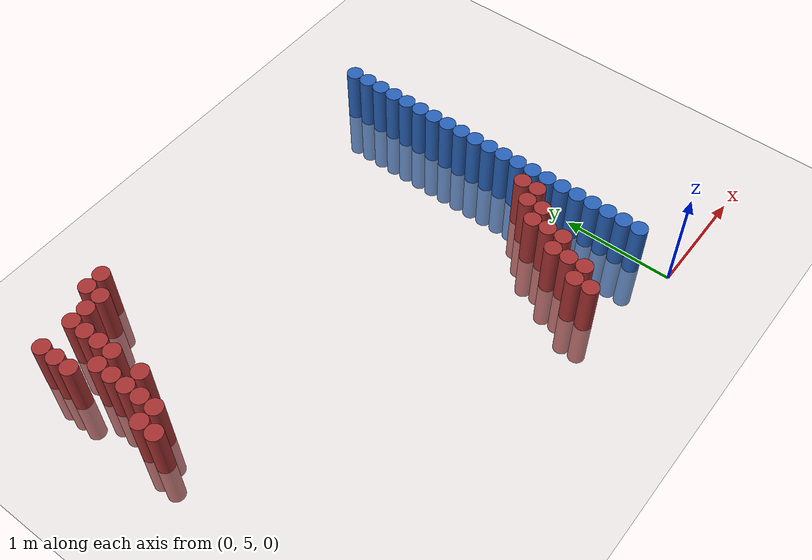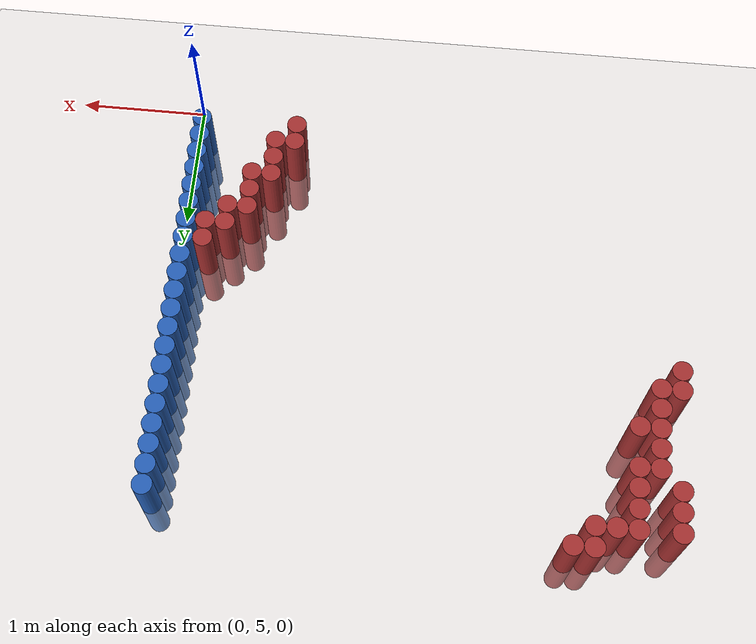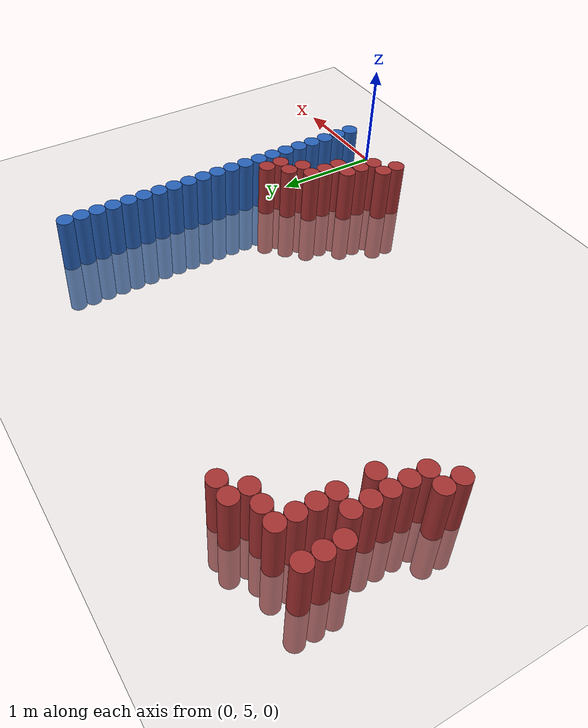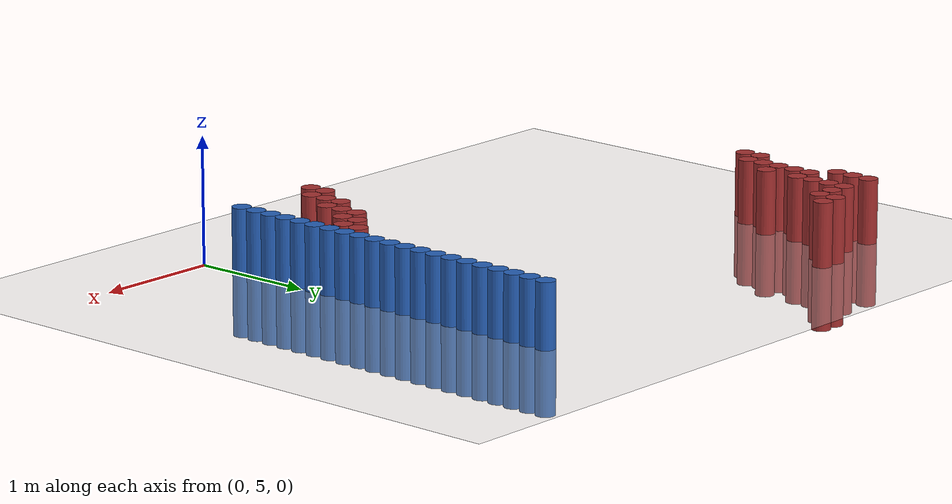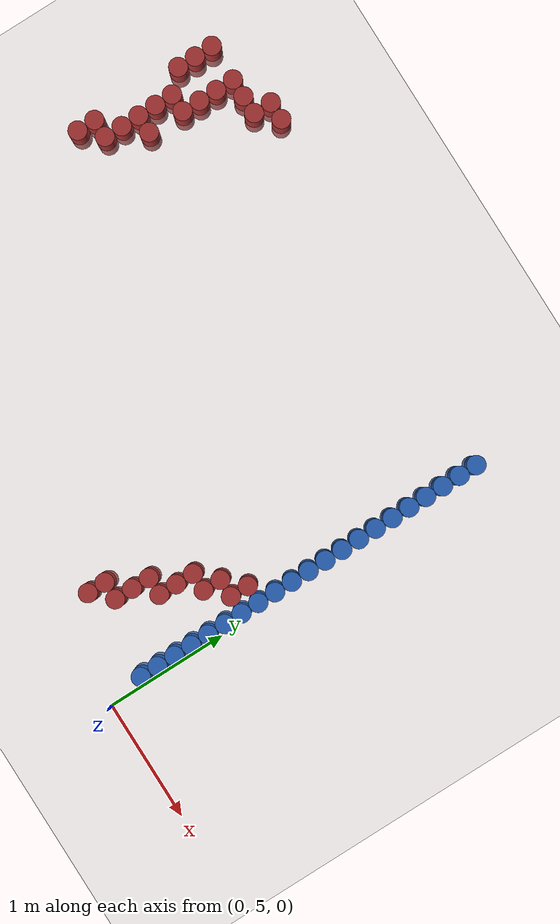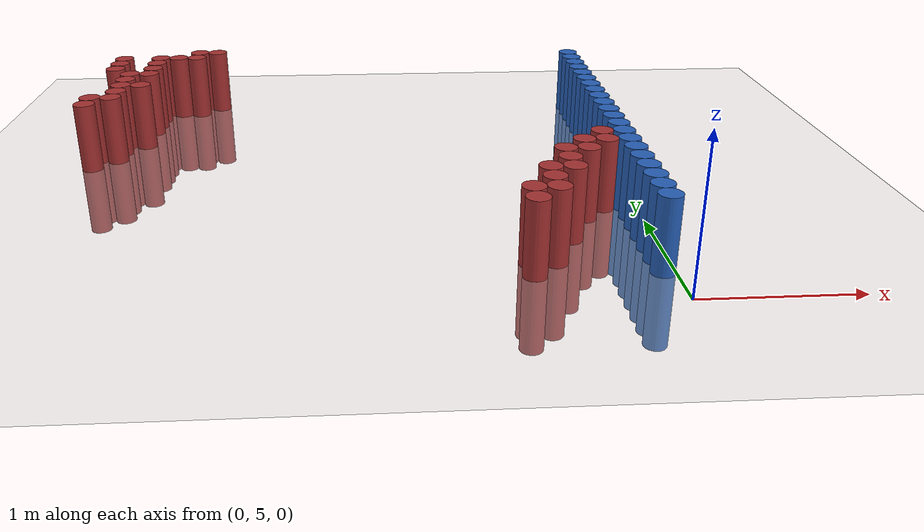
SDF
<sdf version="1.6">
 <world name="default">
  <model name="ground_plane">
   <static>1</static>
   <link name="link">
    <collision name="collision">
     <geometry><plane><normal>0 0 1</normal><size>100 100</size></plane></geometry>
     <surface><friction><ode><mu>100</mu><mu2>50</mu2></ode></friction></surface>
    </collision>
    <visual name="visual">
     <cast_shadows>0</cast_shadows>
     <geometry><plane><normal>0 0 1</normal><size>100 100</size></plane></geometry>
     <material>
      <script><uri>file://media/materials/scripts/gazebo.material</uri><name>Gazebo/Grey</name></script>
     </material>
    </visual>
   </link>
  </model>
  <model name="unit_cylinder_151">
   <static>1</static>
   <pose>-3.825000 7.125000 0.000000 0.000000 0.000000 0.000000</pose>
   <link name="link">
    <inertial>
     <mass>1</mass>
     <inertia><ixx>0.145833</ixx><ixy>0</ixy><ixz>0</ixz><iyy>0.145833</iyy><iyz>0</iyz><izz>0.125</izz></inertia>
    </inertial>
    <collision name="collision">
     <geometry><cylinder><radius>0.075000</radius><length>1</length></cylinder></geometry>
    </collision>
    <visual name="visual">
     <geometry><cylinder><radius>0.075000</radius><length>1</length></cylinder></geometry>
     <material>
      <ambient>0.648000 0.192000 0.192000 1</ambient>
      <diffuse>0.648000 0.192000 0.192000 1</diffuse>
     </material>
     <material>
      <script><name>Gazebo/Grey</name><uri>file://media/materials/scripts/gazebo.material</uri></script>
     </material>
    </visual>
   </link>
  </model>
  <model name="unit_cylinder_152">
   <static>1</static>
   <pose>-3.825000 7.275000 0.000000 0.000000 0.000000 0.000000</pose>
   <link name="link">
    <inertial>
     <mass>1</mass>
     <inertia><ixx>0.145833</ixx><ixy>0</ixy><ixz>0</ixz><iyy>0.145833</iyy><iyz>0</iyz><izz>0.125</izz></inertia>
    </inertial>
    <collision name="collision">
     <geometry><cylinder><radius>0.075000</radius><length>1</length></cylinder></geometry>
    </collision>
    <visual name="visual">
     <geometry><cylinder><radius>0.075000</radius><length>1</length></cylinder></geometry>
     <material>
      <ambient>0.648000 0.192000 0.192000 1</ambient>
      <diffuse>0.648000 0.192000 0.192000 1</diffuse>
     </material>
     <material>
      <script><name>Gazebo/Grey</name><uri>file://media/materials/scripts/gazebo.material</uri></script>
     </material>
    </visual>
   </link>
  </model>
  <model name="unit_cylinder_153">
   <static>1</static>
   <pose>-3.825000 8.025000 0.000000 0.000000 0.000000 0.000000</pose>
   <link name="link">
    <inertial>
     <mass>1</mass>
     <inertia><ixx>0.145833</ixx><ixy>0</ixy><ixz>0</ixz><iyy>0.145833</iyy><iyz>0</iyz><izz>0.125</izz></inertia>
    </inertial>
    <collision name="collision">
     <geometry><cylinder><radius>0.075000</radius><length>1</length></cylinder></geometry>
    </collision>
    <visual name="visual">
     <geometry><cylinder><radius>0.075000</radius><length>1</length></cylinder></geometry>
     <material>
      <ambient>0.648000 0.192000 0.192000 1</ambient>
      <diffuse>0.648000 0.192000 0.192000 1</diffuse>
     </material>
     <material>
      <script><name>Gazebo/Grey</name><uri>file://media/materials/scripts/gazebo.material</uri></script>
     </material>
    </visual>
   </link>
  </model>
  <model name="unit_cylinder_154">
   <static>1</static>
   <pose>-3.825000 8.175000 0.000000 0.000000 0.000000 0.000000</pose>
   <link name="link">
    <inertial>
     <mass>1</mass>
     <inertia><ixx>0.145833</ixx><ixy>0</ixy><ixz>0</ixz><iyy>0.145833</iyy><iyz>0</iyz><izz>0.125</izz></inertia>
    </inertial>
    <collision name="collision">
     <geometry><cylinder><radius>0.075000</radius><length>1</length></cylinder></geometry>
    </collision>
    <visual name="visual">
     <geometry><cylinder><radius>0.075000</radius><length>1</length></cylinder></geometry>
     <material>
      <ambient>0.648000 0.192000 0.192000 1</ambient>
      <diffuse>0.648000 0.192000 0.192000 1</diffuse>
     </material>
     <material>
      <script><name>Gazebo/Grey</name><uri>file://media/materials/scripts/gazebo.material</uri></script>
     </material>
    </visual>
   </link>
  </model>
  <model name="unit_cylinder_155">
   <static>1</static>
   <pose>-3.825000 8.325000 0.000000 0.000000 0.000000 0.000000</pose>
   <link name="link">
    <inertial>
     <mass>1</mass>
     <inertia><ixx>0.145833</ixx><ixy>0</ixy><ixz>0</ixz><iyy>0.145833</iyy><iyz>0</iyz><izz>0.125</izz></inertia>
    </inertial>
    <collision name="collision">
     <geometry><cylinder><radius>0.075000</radius><length>1</length></cylinder></geometry>
    </collision>
    <visual name="visual">
     <geometry><cylinder><radius>0.075000</radius><length>1</length></cylinder></geometry>
     <material>
      <ambient>0.648000 0.192000 0.192000 1</ambient>
      <diffuse>0.648000 0.192000 0.192000 1</diffuse>
     </material>
     <material>
      <script><name>Gazebo/Grey</name><uri>file://media/materials/scripts/gazebo.material</uri></script>
     </material>
    </visual>
   </link>
  </model>
  <model name="unit_cylinder_157">
   <static>1</static>
   <pose>-3.675000 7.275000 0.000000 0.000000 0.000000 0.000000</pose>
   <link name="link">
    <inertial>
     <mass>1</mass>
     <inertia><ixx>0.145833</ixx><ixy>0</ixy><ixz>0</ixz><iyy>0.145833</iyy><iyz>0</iyz><izz>0.125</izz></inertia>
    </inertial>
    <collision name="collision">
     <geometry><cylinder><radius>0.075000</radius><length>1</length></cylinder></geometry>
    </collision>
    <visual name="visual">
     <geometry><cylinder><radius>0.075000</radius><length>1</length></cylinder></geometry>
     <material>
      <ambient>0.648000 0.192000 0.192000 1</ambient>
      <diffuse>0.648000 0.192000 0.192000 1</diffuse>
     </material>
     <material>
      <script><name>Gazebo/Grey</name><uri>file://media/materials/scripts/gazebo.material</uri></script>
     </material>
    </visual>
   </link>
  </model>
  <model name="unit_cylinder_158">
   <static>1</static>
   <pose>-3.675000 7.425000 0.000000 0.000000 0.000000 0.000000</pose>
   <link name="link">
    <inertial>
     <mass>1</mass>
     <inertia><ixx>0.145833</ixx><ixy>0</ixy><ixz>0</ixz><iyy>0.145833</iyy><iyz>0</iyz><izz>0.125</izz></inertia>
    </inertial>
    <collision name="collision">
     <geometry><cylinder><radius>0.075000</radius><length>1</length></cylinder></geometry>
    </collision>
    <visual name="visual">
     <geometry><cylinder><radius>0.075000</radius><length>1</length></cylinder></geometry>
     <material>
      <ambient>0.648000 0.192000 0.192000 1</ambient>
      <diffuse>0.648000 0.192000 0.192000 1</diffuse>
     </material>
     <material>
      <script><name>Gazebo/Grey</name><uri>file://media/materials/scripts/gazebo.material</uri></script>
     </material>
    </visual>
   </link>
  </model>
  <model name="unit_cylinder_159">
   <static>1</static>
   <pose>-3.675000 7.575000 0.000000 0.000000 0.000000 0.000000</pose>
   <link name="link">
    <inertial>
     <mass>1</mass>
     <inertia><ixx>0.145833</ixx><ixy>0</ixy><ixz>0</ixz><iyy>0.145833</iyy><iyz>0</iyz><izz>0.125</izz></inertia>
    </inertial>
    <collision name="collision">
     <geometry><cylinder><radius>0.075000</radius><length>1</length></cylinder></geometry>
    </collision>
    <visual name="visual">
     <geometry><cylinder><radius>0.075000</radius><length>1</length></cylinder></geometry>
     <material>
      <ambient>0.648000 0.192000 0.192000 1</ambient>
      <diffuse>0.648000 0.192000 0.192000 1</diffuse>
     </material>
     <material>
      <script><name>Gazebo/Grey</name><uri>file://media/materials/scripts/gazebo.material</uri></script>
     </material>
    </visual>
   </link>
  </model>
  <model name="unit_cylinder_160">
   <static>1</static>
   <pose>-3.675000 7.725000 0.000000 0.000000 0.000000 0.000000</pose>
   <link name="link">
    <inertial>
     <mass>1</mass>
     <inertia><ixx>0.145833</ixx><ixy>0</ixy><ixz>0</ixz><iyy>0.145833</iyy><iyz>0</iyz><izz>0.125</izz></inertia>
    </inertial>
    <collision name="collision">
     <geometry><cylinder><radius>0.075000</radius><length>1</length></cylinder></geometry>
    </collision>
    <visual name="visual">
     <geometry><cylinder><radius>0.075000</radius><length>1</length></cylinder></geometry>
     <material>
      <ambient>0.648000 0.192000 0.192000 1</ambient>
      <diffuse>0.648000 0.192000 0.192000 1</diffuse>
     </material>
     <material>
      <script><name>Gazebo/Grey</name><uri>file://media/materials/scripts/gazebo.material</uri></script>
     </material>
    </visual>
   </link>
  </model>
  <model name="unit_cylinder_161">
   <static>1</static>
   <pose>-3.675000 7.875000 0.000000 0.000000 0.000000 0.000000</pose>
   <link name="link">
    <inertial>
     <mass>1</mass>
     <inertia><ixx>0.145833</ixx><ixy>0</ixy><ixz>0</ixz><iyy>0.145833</iyy><iyz>0</iyz><izz>0.125</izz></inertia>
    </inertial>
    <collision name="collision">
     <geometry><cylinder><radius>0.075000</radius><length>1</length></cylinder></geometry>
    </collision>
    <visual name="visual">
     <geometry><cylinder><radius>0.075000</radius><length>1</length></cylinder></geometry>
     <material>
      <ambient>0.648000 0.192000 0.192000 1</ambient>
      <diffuse>0.648000 0.192000 0.192000 1</diffuse>
     </material>
     <material>
      <script><name>Gazebo/Grey</name><uri>file://media/materials/scripts/gazebo.material</uri></script>
     </material>
    </visual>
   </link>
  </model>
  <model name="unit_cylinder_163">
   <static>1</static>
   <pose>-3.525000 7.575000 0.000000 0.000000 0.000000 0.000000</pose>
   <link name="link">
    <inertial>
     <mass>1</mass>
     <inertia><ixx>0.145833</ixx><ixy>0</ixy><ixz>0</ixz><iyy>0.145833</iyy><iyz>0</iyz><izz>0.125</izz></inertia>
    </inertial>
    <collision name="collision">
     <geometry><cylinder><radius>0.075000</radius><length>1</length></cylinder></geometry>
    </collision>
    <visual name="visual">
     <geometry><cylinder><radius>0.075000</radius><length>1</length></cylinder></geometry>
     <material>
      <ambient>0.648000 0.192000 0.192000 1</ambient>
      <diffuse>0.648000 0.192000 0.192000 1</diffuse>
     </material>
     <material>
      <script><name>Gazebo/Grey</name><uri>file://media/materials/scripts/gazebo.material</uri></script>
     </material>
    </visual>
   </link>
  </model>
  <model name="unit_cylinder_164">
   <static>1</static>
   <pose>-3.525000 7.875000 0.000000 0.000000 0.000000 0.000000</pose>
   <link name="link">
    <inertial>
     <mass>1</mass>
     <inertia><ixx>0.145833</ixx><ixy>0</ixy><ixz>0</ixz><iyy>0.145833</iyy><iyz>0</iyz><izz>0.125</izz></inertia>
    </inertial>
    <collision name="collision">
     <geometry><cylinder><radius>0.075000</radius><length>1</length></cylinder></geometry>
    </collision>
    <visual name="visual">
     <geometry><cylinder><radius>0.075000</radius><length>1</length></cylinder></geometry>
     <material>
      <ambient>0.648000 0.192000 0.192000 1</ambient>
      <diffuse>0.648000 0.192000 0.192000 1</diffuse>
     </material>
     <material>
      <script><name>Gazebo/Grey</name><uri>file://media/materials/scripts/gazebo.material</uri></script>
     </material>
    </visual>
   </link>
  </model>
  <model name="unit_cylinder_165">
   <static>1</static>
   <pose>-3.525000 8.025000 0.000000 0.000000 0.000000 0.000000</pose>
   <link name="link">
    <inertial>
     <mass>1</mass>
     <inertia><ixx>0.145833</ixx><ixy>0</ixy><ixz>0</ixz><iyy>0.145833</iyy><iyz>0</iyz><izz>0.125</izz></inertia>
    </inertial>
    <collision name="collision">
     <geometry><cylinder><radius>0.075000</radius><length>1</length></cylinder></geometry>
    </collision>
    <visual name="visual">
     <geometry><cylinder><radius>0.075000</radius><length>1</length></cylinder></geometry>
     <material>
      <ambient>0.648000 0.192000 0.192000 1</ambient>
      <diffuse>0.648000 0.192000 0.192000 1</diffuse>
     </material>
     <material>
      <script><name>Gazebo/Grey</name><uri>file://media/materials/scripts/gazebo.material</uri></script>
     </material>
    </visual>
   </link>
  </model>
  <model name="unit_cylinder_166">
   <static>1</static>
   <pose>-3.525000 8.175000 0.000000 0.000000 0.000000 0.000000</pose>
   <link name="link">
    <inertial>
     <mass>1</mass>
     <inertia><ixx>0.145833</ixx><ixy>0</ixy><ixz>0</ixz><iyy>0.145833</iyy><iyz>0</iyz><izz>0.125</izz></inertia>
    </inertial>
    <collision name="collision">
     <geometry><cylinder><radius>0.075000</radius><length>1</length></cylinder></geometry>
    </collision>
    <visual name="visual">
     <geometry><cylinder><radius>0.075000</radius><length>1</length></cylinder></geometry>
     <material>
      <ambient>0.648000 0.192000 0.192000 1</ambient>
      <diffuse>0.648000 0.192000 0.192000 1</diffuse>
     </material>
     <material>
      <script><name>Gazebo/Grey</name><uri>file://media/materials/scripts/gazebo.material</uri></script>
     </material>
    </visual>
   </link>
  </model>
  <model name="unit_cylinder_167">
   <static>1</static>
   <pose>-3.525000 8.325000 0.000000 0.000000 0.000000 0.000000</pose>
   <link name="link">
    <inertial>
     <mass>1</mass>
     <inertia><ixx>0.145833</ixx><ixy>0</ixy><ixz>0</ixz><iyy>0.145833</iyy><iyz>0</iyz><izz>0.125</izz></inertia>
    </inertial>
    <collision name="collision">
     <geometry><cylinder><radius>0.075000</radius><length>1</length></cylinder></geometry>
    </collision>
    <visual name="visual">
     <geometry><cylinder><radius>0.075000</radius><length>1</length></cylinder></geometry>
     <material>
      <ambient>0.648000 0.192000 0.192000 1</ambient>
      <diffuse>0.648000 0.192000 0.192000 1</diffuse>
     </material>
     <material>
      <script><name>Gazebo/Grey</name><uri>file://media/materials/scripts/gazebo.material</uri></script>
     </material>
    </visual>
   </link>
  </model>
  <model name="unit_cylinder_169">
   <static>1</static>
   <pose>-3.375000 8.325000 0.000000 0.000000 0.000000 0.000000</pose>
   <link name="link">
    <inertial>
     <mass>1</mass>
     <inertia><ixx>0.145833</ixx><ixy>0</ixy><ixz>0</ixz><iyy>0.145833</iyy><iyz>0</iyz><izz>0.125</izz></inertia>
    </inertial>
    <collision name="collision">
     <geometry><cylinder><radius>0.075000</radius><length>1</length></cylinder></geometry>
    </collision>
    <visual name="visual">
     <geometry><cylinder><radius>0.075000</radius><length>1</length></cylinder></geometry>
     <material>
      <ambient>0.648000 0.192000 0.192000 1</ambient>
      <diffuse>0.648000 0.192000 0.192000 1</diffuse>
     </material>
     <material>
      <script><name>Gazebo/Grey</name><uri>file://media/materials/scripts/gazebo.material</uri></script>
     </material>
    </visual>
   </link>
  </model>
  <model name="unit_cylinder_171">
   <static>1</static>
   <pose>-3.225000 8.325000 0.000000 0.000000 0.000000 0.000000</pose>
   <link name="link">
    <inertial>
     <mass>1</mass>
     <inertia><ixx>0.145833</ixx><ixy>0</ixy><ixz>0</ixz><iyy>0.145833</iyy><iyz>0</iyz><izz>0.125</izz></inertia>
    </inertial>
    <collision name="collision">
     <geometry><cylinder><radius>0.075000</radius><length>1</length></cylinder></geometry>
    </collision>
    <visual name="visual">
     <geometry><cylinder><radius>0.075000</radius><length>1</length></cylinder></geometry>
     <material>
      <ambient>0.648000 0.192000 0.192000 1</ambient>
      <diffuse>0.648000 0.192000 0.192000 1</diffuse>
     </material>
     <material>
      <script><name>Gazebo/Grey</name><uri>file://media/materials/scripts/gazebo.material</uri></script>
     </material>
    </visual>
   </link>
  </model>
  <model name="unit_cylinder_172">
   <static>1</static>
   <pose>-3.225000 8.475000 0.000000 0.000000 0.000000 0.000000</pose>
   <link name="link">
    <inertial>
     <mass>1</mass>
     <inertia><ixx>0.145833</ixx><ixy>0</ixy><ixz>0</ixz><iyy>0.145833</iyy><iyz>0</iyz><izz>0.125</izz></inertia>
    </inertial>
    <collision name="collision">
     <geometry><cylinder><radius>0.075000</radius><length>1</length></cylinder></geometry>
    </collision>
    <visual name="visual">
     <geometry><cylinder><radius>0.075000</radius><length>1</length></cylinder></geometry>
     <material>
      <ambient>0.648000 0.192000 0.192000 1</ambient>
      <diffuse>0.648000 0.192000 0.192000 1</diffuse>
     </material>
     <material>
      <script><name>Gazebo/Grey</name><uri>file://media/materials/scripts/gazebo.material</uri></script>
     </material>
    </visual>
   </link>
  </model>
  <model name="unit_cylinder_174">
   <static>1</static>
   <pose>-3.075000 8.475000 0.000000 0.000000 0.000000 0.000000</pose>
   <link name="link">
    <inertial>
     <mass>1</mass>
     <inertia><ixx>0.145833</ixx><ixy>0</ixy><ixz>0</ixz><iyy>0.145833</iyy><iyz>0</iyz><izz>0.125</izz></inertia>
    </inertial>
    <collision name="collision">
     <geometry><cylinder><radius>0.075000</radius><length>1</length></cylinder></geometry>
    </collision>
    <visual name="visual">
     <geometry><cylinder><radius>0.075000</radius><length>1</length></cylinder></geometry>
     <material>
      <ambient>0.648000 0.192000 0.192000 1</ambient>
      <diffuse>0.648000 0.192000 0.192000 1</diffuse>
     </material>
     <material>
      <script><name>Gazebo/Grey</name><uri>file://media/materials/scripts/gazebo.material</uri></script>
     </material>
    </visual>
   </link>
  </model>
  <model name="unit_cylinder_215">
   <static>1</static>
   <pose>-0.825000 5.325000 0.000000 0.000000 0.000000 0.000000</pose>
   <link name="link">
    <inertial>
     <mass>1</mass>
     <inertia><ixx>0.145833</ixx><ixy>0</ixy><ixz>0</ixz><iyy>0.145833</iyy><iyz>0</iyz><izz>0.125</izz></inertia>
    </inertial>
    <collision name="collision">
     <geometry><cylinder><radius>0.075000</radius><length>1</length></cylinder></geometry>
    </collision>
    <visual name="visual">
     <geometry><cylinder><radius>0.075000</radius><length>1</length></cylinder></geometry>
     <material>
      <ambient>0.648000 0.192000 0.192000 1</ambient>
      <diffuse>0.648000 0.192000 0.192000 1</diffuse>
     </material>
     <material>
      <script><name>Gazebo/Grey</name><uri>file://media/materials/scripts/gazebo.material</uri></script>
     </material>
    </visual>
   </link>
  </model>
  <model name="unit_cylinder_216">
   <static>1</static>
   <pose>-0.825000 5.475000 0.000000 0.000000 0.000000 0.000000</pose>
   <link name="link">
    <inertial>
     <mass>1</mass>
     <inertia><ixx>0.145833</ixx><ixy>0</ixy><ixz>0</ixz><iyy>0.145833</iyy><iyz>0</iyz><izz>0.125</izz></inertia>
    </inertial>
    <collision name="collision">
     <geometry><cylinder><radius>0.075000</radius><length>1</length></cylinder></geometry>
    </collision>
    <visual name="visual">
     <geometry><cylinder><radius>0.075000</radius><length>1</length></cylinder></geometry>
     <material>
      <ambient>0.648000 0.192000 0.192000 1</ambient>
      <diffuse>0.648000 0.192000 0.192000 1</diffuse>
     </material>
     <material>
      <script><name>Gazebo/Grey</name><uri>file://media/materials/scripts/gazebo.material</uri></script>
     </material>
    </visual>
   </link>
  </model>
  <model name="unit_cylinder_219">
   <static>1</static>
   <pose>-0.675000 5.475000 0.000000 0.000000 0.000000 0.000000</pose>
   <link name="link">
    <inertial>
     <mass>1</mass>
     <inertia><ixx>0.145833</ixx><ixy>0</ixy><ixz>0</ixz><iyy>0.145833</iyy><iyz>0</iyz><izz>0.125</izz></inertia>
    </inertial>
    <collision name="collision">
     <geometry><cylinder><radius>0.075000</radius><length>1</length></cylinder></geometry>
    </collision>
    <visual name="visual">
     <geometry><cylinder><radius>0.075000</radius><length>1</length></cylinder></geometry>
     <material>
      <ambient>0.648000 0.192000 0.192000 1</ambient>
      <diffuse>0.648000 0.192000 0.192000 1</diffuse>
     </material>
     <material>
      <script><name>Gazebo/Grey</name><uri>file://media/materials/scripts/gazebo.material</uri></script>
     </material>
    </visual>
   </link>
  </model>
  <model name="unit_cylinder_220">
   <static>1</static>
   <pose>-0.675000 5.625000 0.000000 0.000000 0.000000 0.000000</pose>
   <link name="link">
    <inertial>
     <mass>1</mass>
     <inertia><ixx>0.145833</ixx><ixy>0</ixy><ixz>0</ixz><iyy>0.145833</iyy><iyz>0</iyz><izz>0.125</izz></inertia>
    </inertial>
    <collision name="collision">
     <geometry><cylinder><radius>0.075000</radius><length>1</length></cylinder></geometry>
    </collision>
    <visual name="visual">
     <geometry><cylinder><radius>0.075000</radius><length>1</length></cylinder></geometry>
     <material>
      <ambient>0.648000 0.192000 0.192000 1</ambient>
      <diffuse>0.648000 0.192000 0.192000 1</diffuse>
     </material>
     <material>
      <script><name>Gazebo/Grey</name><uri>file://media/materials/scripts/gazebo.material</uri></script>
     </material>
    </visual>
   </link>
  </model>
  <model name="unit_cylinder_221">
   <static>1</static>
   <pose>-0.675000 5.775000 0.000000 0.000000 0.000000 0.000000</pose>
   <link name="link">
    <inertial>
     <mass>1</mass>
     <inertia><ixx>0.145833</ixx><ixy>0</ixy><ixz>0</ixz><iyy>0.145833</iyy><iyz>0</iyz><izz>0.125</izz></inertia>
    </inertial>
    <collision name="collision">
     <geometry><cylinder><radius>0.075000</radius><length>1</length></cylinder></geometry>
    </collision>
    <visual name="visual">
     <geometry><cylinder><radius>0.075000</radius><length>1</length></cylinder></geometry>
     <material>
      <ambient>0.648000 0.192000 0.192000 1</ambient>
      <diffuse>0.648000 0.192000 0.192000 1</diffuse>
     </material>
     <material>
      <script><name>Gazebo/Grey</name><uri>file://media/materials/scripts/gazebo.material</uri></script>
     </material>
    </visual>
   </link>
  </model>
  <model name="unit_cylinder_223">
   <static>1</static>
   <pose>-0.525000 5.775000 0.000000 0.000000 0.000000 0.000000</pose>
   <link name="link">
    <inertial>
     <mass>1</mass>
     <inertia><ixx>0.145833</ixx><ixy>0</ixy><ixz>0</ixz><iyy>0.145833</iyy><iyz>0</iyz><izz>0.125</izz></inertia>
    </inertial>
    <collision name="collision">
     <geometry><cylinder><radius>0.075000</radius><length>1</length></cylinder></geometry>
    </collision>
    <visual name="visual">
     <geometry><cylinder><radius>0.075000</radius><length>1</length></cylinder></geometry>
     <material>
      <ambient>0.648000 0.192000 0.192000 1</ambient>
      <diffuse>0.648000 0.192000 0.192000 1</diffuse>
     </material>
     <material>
      <script><name>Gazebo/Grey</name><uri>file://media/materials/scripts/gazebo.material</uri></script>
     </material>
    </visual>
   </link>
  </model>
  <model name="unit_cylinder_224">
   <static>1</static>
   <pose>-0.525000 5.925000 0.000000 0.000000 0.000000 0.000000</pose>
   <link name="link">
    <inertial>
     <mass>1</mass>
     <inertia><ixx>0.145833</ixx><ixy>0</ixy><ixz>0</ixz><iyy>0.145833</iyy><iyz>0</iyz><izz>0.125</izz></inertia>
    </inertial>
    <collision name="collision">
     <geometry><cylinder><radius>0.075000</radius><length>1</length></cylinder></geometry>
    </collision>
    <visual name="visual">
     <geometry><cylinder><radius>0.075000</radius><length>1</length></cylinder></geometry>
     <material>
      <ambient>0.648000 0.192000 0.192000 1</ambient>
      <diffuse>0.648000 0.192000 0.192000 1</diffuse>
     </material>
     <material>
      <script><name>Gazebo/Grey</name><uri>file://media/materials/scripts/gazebo.material</uri></script>
     </material>
    </visual>
   </link>
  </model>
  <model name="unit_cylinder_225">
   <static>1</static>
   <pose>-0.525000 6.075000 0.000000 0.000000 0.000000 0.000000</pose>
   <link name="link">
    <inertial>
     <mass>1</mass>
     <inertia><ixx>0.145833</ixx><ixy>0</ixy><ixz>0</ixz><iyy>0.145833</iyy><iyz>0</iyz><izz>0.125</izz></inertia>
    </inertial>
    <collision name="collision">
     <geometry><cylinder><radius>0.075000</radius><length>1</length></cylinder></geometry>
    </collision>
    <visual name="visual">
     <geometry><cylinder><radius>0.075000</radius><length>1</length></cylinder></geometry>
     <material>
      <ambient>0.648000 0.192000 0.192000 1</ambient>
      <diffuse>0.648000 0.192000 0.192000 1</diffuse>
     </material>
     <material>
      <script><name>Gazebo/Grey</name><uri>file://media/materials/scripts/gazebo.material</uri></script>
     </material>
    </visual>
   </link>
  </model>
  <model name="unit_cylinder_227">
   <static>1</static>
   <pose>-0.375000 6.075000 0.000000 0.000000 0.000000 0.000000</pose>
   <link name="link">
    <inertial>
     <mass>1</mass>
     <inertia><ixx>0.145833</ixx><ixy>0</ixy><ixz>0</ixz><iyy>0.145833</iyy><iyz>0</iyz><izz>0.125</izz></inertia>
    </inertial>
    <collision name="collision">
     <geometry><cylinder><radius>0.075000</radius><length>1</length></cylinder></geometry>
    </collision>
    <visual name="visual">
     <geometry><cylinder><radius>0.075000</radius><length>1</length></cylinder></geometry>
     <material>
      <ambient>0.648000 0.192000 0.192000 1</ambient>
      <diffuse>0.648000 0.192000 0.192000 1</diffuse>
     </material>
     <material>
      <script><name>Gazebo/Grey</name><uri>file://media/materials/scripts/gazebo.material</uri></script>
     </material>
    </visual>
   </link>
  </model>
  <model name="unit_cylinder_228">
   <static>1</static>
   <pose>-0.375000 6.225000 0.000000 0.000000 0.000000 0.000000</pose>
   <link name="link">
    <inertial>
     <mass>1</mass>
     <inertia><ixx>0.145833</ixx><ixy>0</ixy><ixz>0</ixz><iyy>0.145833</iyy><iyz>0</iyz><izz>0.125</izz></inertia>
    </inertial>
    <collision name="collision">
     <geometry><cylinder><radius>0.075000</radius><length>1</length></cylinder></geometry>
    </collision>
    <visual name="visual">
     <geometry><cylinder><radius>0.075000</radius><length>1</length></cylinder></geometry>
     <material>
      <ambient>0.648000 0.192000 0.192000 1</ambient>
      <diffuse>0.648000 0.192000 0.192000 1</diffuse>
     </material>
     <material>
      <script><name>Gazebo/Grey</name><uri>file://media/materials/scripts/gazebo.material</uri></script>
     </material>
    </visual>
   </link>
  </model>
  <model name="unit_cylinder_230">
   <static>1</static>
   <pose>-0.225000 6.225000 0.000000 0.000000 0.000000 0.000000</pose>
   <link name="link">
    <inertial>
     <mass>1</mass>
     <inertia><ixx>0.145833</ixx><ixy>0</ixy><ixz>0</ixz><iyy>0.145833</iyy><iyz>0</iyz><izz>0.125</izz></inertia>
    </inertial>
    <collision name="collision">
     <geometry><cylinder><radius>0.075000</radius><length>1</length></cylinder></geometry>
    </collision>
    <visual name="visual">
     <geometry><cylinder><radius>0.075000</radius><length>1</length></cylinder></geometry>
     <material>
      <ambient>0.648000 0.192000 0.192000 1</ambient>
      <diffuse>0.648000 0.192000 0.192000 1</diffuse>
     </material>
     <material>
      <script><name>Gazebo/Grey</name><uri>file://media/materials/scripts/gazebo.material</uri></script>
     </material>
    </visual>
   </link>
  </model>
  <model name="unit_cylinder_231">
   <static>1</static>
   <pose>-0.225000 6.375000 0.000000 0.000000 0.000000 0.000000</pose>
   <link name="link">
    <inertial>
     <mass>1</mass>
     <inertia><ixx>0.145833</ixx><ixy>0</ixy><ixz>0</ixz><iyy>0.145833</iyy><iyz>0</iyz><izz>0.125</izz></inertia>
    </inertial>
    <collision name="collision">
     <geometry><cylinder><radius>0.075000</radius><length>1</length></cylinder></geometry>
    </collision>
    <visual name="visual">
     <geometry><cylinder><radius>0.075000</radius><length>1</length></cylinder></geometry>
     <material>
      <ambient>0.648000 0.192000 0.192000 1</ambient>
      <diffuse>0.648000 0.192000 0.192000 1</diffuse>
     </material>
     <material>
      <script><name>Gazebo/Grey</name><uri>file://media/materials/scripts/gazebo.material</uri></script>
     </material>
    </visual>
   </link>
  </model>
  <model name="unit_cylinder_233">
   <static>1</static>
   <pose>-0.075000 5.325000 0.000000 0.000000 0.000000 0.000000</pose>
   <link name="link">
    <inertial>
     <mass>1</mass>
     <inertia><ixx>0.145833</ixx><ixy>0</ixy><ixz>0</ixz><iyy>0.145833</iyy><iyz>0</iyz><izz>0.125</izz></inertia>
    </inertial>
    <collision name="collision">
     <geometry><cylinder><radius>0.075000</radius><length>1</length></cylinder></geometry>
    </collision>
    <visual name="visual">
     <geometry><cylinder><radius>0.075000</radius><length>1</length></cylinder></geometry>
     <material>
      <ambient>0.152000 0.379000 0.720000 1</ambient>
      <diffuse>0.152000 0.379000 0.720000 1</diffuse>
     </material>
     <material>
      <script><name>Gazebo/Grey</name><uri>file://media/materials/scripts/gazebo.material</uri></script>
     </material>
    </visual>
   </link>
  </model>
  <model name="unit_cylinder_234">
   <static>1</static>
   <pose>-0.075000 5.475000 0.000000 0.000000 0.000000 0.000000</pose>
   <link name="link">
    <inertial>
     <mass>1</mass>
     <inertia><ixx>0.145833</ixx><ixy>0</ixy><ixz>0</ixz><iyy>0.145833</iyy><iyz>0</iyz><izz>0.125</izz></inertia>
    </inertial>
    <collision name="collision">
     <geometry><cylinder><radius>0.075000</radius><length>1</length></cylinder></geometry>
    </collision>
    <visual name="visual">
     <geometry><cylinder><radius>0.075000</radius><length>1</length></cylinder></geometry>
     <material>
      <ambient>0.152000 0.379000 0.720000 1</ambient>
      <diffuse>0.152000 0.379000 0.720000 1</diffuse>
     </material>
     <material>
      <script><name>Gazebo/Grey</name><uri>file://media/materials/scripts/gazebo.material</uri></script>
     </material>
    </visual>
   </link>
  </model>
  <model name="unit_cylinder_235">
   <static>1</static>
   <pose>-0.075000 5.625000 0.000000 0.000000 0.000000 0.000000</pose>
   <link name="link">
    <inertial>
     <mass>1</mass>
     <inertia><ixx>0.145833</ixx><ixy>0</ixy><ixz>0</ixz><iyy>0.145833</iyy><iyz>0</iyz><izz>0.125</izz></inertia>
    </inertial>
    <collision name="collision">
     <geometry><cylinder><radius>0.075000</radius><length>1</length></cylinder></geometry>
    </collision>
    <visual name="visual">
     <geometry><cylinder><radius>0.075000</radius><length>1</length></cylinder></geometry>
     <material>
      <ambient>0.152000 0.379000 0.720000 1</ambient>
      <diffuse>0.152000 0.379000 0.720000 1</diffuse>
     </material>
     <material>
      <script><name>Gazebo/Grey</name><uri>file://media/materials/scripts/gazebo.material</uri></script>
     </material>
    </visual>
   </link>
  </model>
  <model name="unit_cylinder_236">
   <static>1</static>
   <pose>-0.075000 5.775000 0.000000 0.000000 0.000000 0.000000</pose>
   <link name="link">
    <inertial>
     <mass>1</mass>
     <inertia><ixx>0.145833</ixx><ixy>0</ixy><ixz>0</ixz><iyy>0.145833</iyy><iyz>0</iyz><izz>0.125</izz></inertia>
    </inertial>
    <collision name="collision">
     <geometry><cylinder><radius>0.075000</radius><length>1</length></cylinder></geometry>
    </collision>
    <visual name="visual">
     <geometry><cylinder><radius>0.075000</radius><length>1</length></cylinder></geometry>
     <material>
      <ambient>0.152000 0.379000 0.720000 1</ambient>
      <diffuse>0.152000 0.379000 0.720000 1</diffuse>
     </material>
     <material>
      <script><name>Gazebo/Grey</name><uri>file://media/materials/scripts/gazebo.material</uri></script>
     </material>
    </visual>
   </link>
  </model>
  <model name="unit_cylinder_237">
   <static>1</static>
   <pose>-0.075000 5.925000 0.000000 0.000000 0.000000 0.000000</pose>
   <link name="link">
    <inertial>
     <mass>1</mass>
     <inertia><ixx>0.145833</ixx><ixy>0</ixy><ixz>0</ixz><iyy>0.145833</iyy><iyz>0</iyz><izz>0.125</izz></inertia>
    </inertial>
    <collision name="collision">
     <geometry><cylinder><radius>0.075000</radius><length>1</length></cylinder></geometry>
    </collision>
    <visual name="visual">
     <geometry><cylinder><radius>0.075000</radius><length>1</length></cylinder></geometry>
     <material>
      <ambient>0.152000 0.379000 0.720000 1</ambient>
      <diffuse>0.152000 0.379000 0.720000 1</diffuse>
     </material>
     <material>
      <script><name>Gazebo/Grey</name><uri>file://media/materials/scripts/gazebo.material</uri></script>
     </material>
    </visual>
   </link>
  </model>
  <model name="unit_cylinder_238">
   <static>1</static>
   <pose>-0.075000 6.075000 0.000000 0.000000 0.000000 0.000000</pose>
   <link name="link">
    <inertial>
     <mass>1</mass>
     <inertia><ixx>0.145833</ixx><ixy>0</ixy><ixz>0</ixz><iyy>0.145833</iyy><iyz>0</iyz><izz>0.125</izz></inertia>
    </inertial>
    <collision name="collision">
     <geometry><cylinder><radius>0.075000</radius><length>1</length></cylinder></geometry>
    </collision>
    <visual name="visual">
     <geometry><cylinder><radius>0.075000</radius><length>1</length></cylinder></geometry>
     <material>
      <ambient>0.152000 0.379000 0.720000 1</ambient>
      <diffuse>0.152000 0.379000 0.720000 1</diffuse>
     </material>
     <material>
      <script><name>Gazebo/Grey</name><uri>file://media/materials/scripts/gazebo.material</uri></script>
     </material>
    </visual>
   </link>
  </model>
  <model name="unit_cylinder_239">
   <static>1</static>
   <pose>-0.075000 6.225000 0.000000 0.000000 0.000000 0.000000</pose>
   <link name="link">
    <inertial>
     <mass>1</mass>
     <inertia><ixx>0.145833</ixx><ixy>0</ixy><ixz>0</ixz><iyy>0.145833</iyy><iyz>0</iyz><izz>0.125</izz></inertia>
    </inertial>
    <collision name="collision">
     <geometry><cylinder><radius>0.075000</radius><length>1</length></cylinder></geometry>
    </collision>
    <visual name="visual">
     <geometry><cylinder><radius>0.075000</radius><length>1</length></cylinder></geometry>
     <material>
      <ambient>0.152000 0.379000 0.720000 1</ambient>
      <diffuse>0.152000 0.379000 0.720000 1</diffuse>
     </material>
     <material>
      <script><name>Gazebo/Grey</name><uri>file://media/materials/scripts/gazebo.material</uri></script>
     </material>
    </visual>
   </link>
  </model>
  <model name="unit_cylinder_240">
   <static>1</static>
   <pose>-0.075000 6.375000 0.000000 0.000000 0.000000 0.000000</pose>
   <link name="link">
    <inertial>
     <mass>1</mass>
     <inertia><ixx>0.145833</ixx><ixy>0</ixy><ixz>0</ixz><iyy>0.145833</iyy><iyz>0</iyz><izz>0.125</izz></inertia>
    </inertial>
    <collision name="collision">
     <geometry><cylinder><radius>0.075000</radius><length>1</length></cylinder></geometry>
    </collision>
    <visual name="visual">
     <geometry><cylinder><radius>0.075000</radius><length>1</length></cylinder></geometry>
     <material>
      <ambient>0.152000 0.379000 0.720000 1</ambient>
      <diffuse>0.152000 0.379000 0.720000 1</diffuse>
     </material>
     <material>
      <script><name>Gazebo/Grey</name><uri>file://media/materials/scripts/gazebo.material</uri></script>
     </material>
    </visual>
   </link>
  </model>
  <model name="unit_cylinder_241">
   <static>1</static>
   <pose>-0.075000 6.525000 0.000000 0.000000 0.000000 0.000000</pose>
   <link name="link">
    <inertial>
     <mass>1</mass>
     <inertia><ixx>0.145833</ixx><ixy>0</ixy><ixz>0</ixz><iyy>0.145833</iyy><iyz>0</iyz><izz>0.125</izz></inertia>
    </inertial>
    <collision name="collision">
     <geometry><cylinder><radius>0.075000</radius><length>1</length></cylinder></geometry>
    </collision>
    <visual name="visual">
     <geometry><cylinder><radius>0.075000</radius><length>1</length></cylinder></geometry>
     <material>
      <ambient>0.152000 0.379000 0.720000 1</ambient>
      <diffuse>0.152000 0.379000 0.720000 1</diffuse>
     </material>
     <material>
      <script><name>Gazebo/Grey</name><uri>file://media/materials/scripts/gazebo.material</uri></script>
     </material>
    </visual>
   </link>
  </model>
  <model name="unit_cylinder_242">
   <static>1</static>
   <pose>-0.075000 6.675000 0.000000 0.000000 0.000000 0.000000</pose>
   <link name="link">
    <inertial>
     <mass>1</mass>
     <inertia><ixx>0.145833</ixx><ixy>0</ixy><ixz>0</ixz><iyy>0.145833</iyy><iyz>0</iyz><izz>0.125</izz></inertia>
    </inertial>
    <collision name="collision">
     <geometry><cylinder><radius>0.075000</radius><length>1</length></cylinder></geometry>
    </collision>
    <visual name="visual">
     <geometry><cylinder><radius>0.075000</radius><length>1</length></cylinder></geometry>
     <material>
      <ambient>0.152000 0.379000 0.720000 1</ambient>
      <diffuse>0.152000 0.379000 0.720000 1</diffuse>
     </material>
     <material>
      <script><name>Gazebo/Grey</name><uri>file://media/materials/scripts/gazebo.material</uri></script>
     </material>
    </visual>
   </link>
  </model>
  <model name="unit_cylinder_243">
   <static>1</static>
   <pose>-0.075000 6.825000 0.000000 0.000000 0.000000 0.000000</pose>
   <link name="link">
    <inertial>
     <mass>1</mass>
     <inertia><ixx>0.145833</ixx><ixy>0</ixy><ixz>0</ixz><iyy>0.145833</iyy><iyz>0</iyz><izz>0.125</izz></inertia>
    </inertial>
    <collision name="collision">
     <geometry><cylinder><radius>0.075000</radius><length>1</length></cylinder></geometry>
    </collision>
    <visual name="visual">
     <geometry><cylinder><radius>0.075000</radius><length>1</length></cylinder></geometry>
     <material>
      <ambient>0.152000 0.379000 0.720000 1</ambient>
      <diffuse>0.152000 0.379000 0.720000 1</diffuse>
     </material>
     <material>
      <script><name>Gazebo/Grey</name><uri>file://media/materials/scripts/gazebo.material</uri></script>
     </material>
    </visual>
   </link>
  </model>
  <model name="unit_cylinder_244">
   <static>1</static>
   <pose>-0.075000 6.975000 0.000000 0.000000 0.000000 0.000000</pose>
   <link name="link">
    <inertial>
     <mass>1</mass>
     <inertia><ixx>0.145833</ixx><ixy>0</ixy><ixz>0</ixz><iyy>0.145833</iyy><iyz>0</iyz><izz>0.125</izz></inertia>
    </inertial>
    <collision name="collision">
     <geometry><cylinder><radius>0.075000</radius><length>1</length></cylinder></geometry>
    </collision>
    <visual name="visual">
     <geometry><cylinder><radius>0.075000</radius><length>1</length></cylinder></geometry>
     <material>
      <ambient>0.152000 0.379000 0.720000 1</ambient>
      <diffuse>0.152000 0.379000 0.720000 1</diffuse>
     </material>
     <material>
      <script><name>Gazebo/Grey</name><uri>file://media/materials/scripts/gazebo.material</uri></script>
     </material>
    </visual>
   </link>
  </model>
  <model name="unit_cylinder_245">
   <static>1</static>
   <pose>-0.075000 7.125000 0.000000 0.000000 0.000000 0.000000</pose>
   <link name="link">
    <inertial>
     <mass>1</mass>
     <inertia><ixx>0.145833</ixx><ixy>0</ixy><ixz>0</ixz><iyy>0.145833</iyy><iyz>0</iyz><izz>0.125</izz></inertia>
    </inertial>
    <collision name="collision">
     <geometry><cylinder><radius>0.075000</radius><length>1</length></cylinder></geometry>
    </collision>
    <visual name="visual">
     <geometry><cylinder><radius>0.075000</radius><length>1</length></cylinder></geometry>
     <material>
      <ambient>0.152000 0.379000 0.720000 1</ambient>
      <diffuse>0.152000 0.379000 0.720000 1</diffuse>
     </material>
     <material>
      <script><name>Gazebo/Grey</name><uri>file://media/materials/scripts/gazebo.material</uri></script>
     </material>
    </visual>
   </link>
  </model>
  <model name="unit_cylinder_246">
   <static>1</static>
   <pose>-0.075000 7.275000 0.000000 0.000000 0.000000 0.000000</pose>
   <link name="link">
    <inertial>
     <mass>1</mass>
     <inertia><ixx>0.145833</ixx><ixy>0</ixy><ixz>0</ixz><iyy>0.145833</iyy><iyz>0</iyz><izz>0.125</izz></inertia>
    </inertial>
    <collision name="collision">
     <geometry><cylinder><radius>0.075000</radius><length>1</length></cylinder></geometry>
    </collision>
    <visual name="visual">
     <geometry><cylinder><radius>0.075000</radius><length>1</length></cylinder></geometry>
     <material>
      <ambient>0.152000 0.379000 0.720000 1</ambient>
      <diffuse>0.152000 0.379000 0.720000 1</diffuse>
     </material>
     <material>
      <script><name>Gazebo/Grey</name><uri>file://media/materials/scripts/gazebo.material</uri></script>
     </material>
    </visual>
   </link>
  </model>
  <model name="unit_cylinder_247">
   <static>1</static>
   <pose>-0.075000 7.425000 0.000000 0.000000 0.000000 0.000000</pose>
   <link name="link">
    <inertial>
     <mass>1</mass>
     <inertia><ixx>0.145833</ixx><ixy>0</ixy><ixz>0</ixz><iyy>0.145833</iyy><iyz>0</iyz><izz>0.125</izz></inertia>
    </inertial>
    <collision name="collision">
     <geometry><cylinder><radius>0.075000</radius><length>1</length></cylinder></geometry>
    </collision>
    <visual name="visual">
     <geometry><cylinder><radius>0.075000</radius><length>1</length></cylinder></geometry>
     <material>
      <ambient>0.152000 0.379000 0.720000 1</ambient>
      <diffuse>0.152000 0.379000 0.720000 1</diffuse>
     </material>
     <material>
      <script><name>Gazebo/Grey</name><uri>file://media/materials/scripts/gazebo.material</uri></script>
     </material>
    </visual>
   </link>
  </model>
  <model name="unit_cylinder_248">
   <static>1</static>
   <pose>-0.075000 7.575000 0.000000 0.000000 0.000000 0.000000</pose>
   <link name="link">
    <inertial>
     <mass>1</mass>
     <inertia><ixx>0.145833</ixx><ixy>0</ixy><ixz>0</ixz><iyy>0.145833</iyy><iyz>0</iyz><izz>0.125</izz></inertia>
    </inertial>
    <collision name="collision">
     <geometry><cylinder><radius>0.075000</radius><length>1</length></cylinder></geometry>
    </collision>
    <visual name="visual">
     <geometry><cylinder><radius>0.075000</radius><length>1</length></cylinder></geometry>
     <material>
      <ambient>0.152000 0.379000 0.720000 1</ambient>
      <diffuse>0.152000 0.379000 0.720000 1</diffuse>
     </material>
     <material>
      <script><name>Gazebo/Grey</name><uri>file://media/materials/scripts/gazebo.material</uri></script>
     </material>
    </visual>
   </link>
  </model>
  <model name="unit_cylinder_249">
   <static>1</static>
   <pose>-0.075000 7.725000 0.000000 0.000000 0.000000 0.000000</pose>
   <link name="link">
    <inertial>
     <mass>1</mass>
     <inertia><ixx>0.145833</ixx><ixy>0</ixy><ixz>0</ixz><iyy>0.145833</iyy><iyz>0</iyz><izz>0.125</izz></inertia>
    </inertial>
    <collision name="collision">
     <geometry><cylinder><radius>0.075000</radius><length>1</length></cylinder></geometry>
    </collision>
    <visual name="visual">
     <geometry><cylinder><radius>0.075000</radius><length>1</length></cylinder></geometry>
     <material>
      <ambient>0.152000 0.379000 0.720000 1</ambient>
      <diffuse>0.152000 0.379000 0.720000 1</diffuse>
     </material>
     <material>
      <script><name>Gazebo/Grey</name><uri>file://media/materials/scripts/gazebo.material</uri></script>
     </material>
    </visual>
   </link>
  </model>
  <model name="unit_cylinder_250">
   <static>1</static>
   <pose>-0.075000 7.875000 0.000000 0.000000 0.000000 0.000000</pose>
   <link name="link">
    <inertial>
     <mass>1</mass>
     <inertia><ixx>0.145833</ixx><ixy>0</ixy><ixz>0</ixz><iyy>0.145833</iyy><iyz>0</iyz><izz>0.125</izz></inertia>
    </inertial>
    <collision name="collision">
     <geometry><cylinder><radius>0.075000</radius><length>1</length></cylinder></geometry>
    </collision>
    <visual name="visual">
     <geometry><cylinder><radius>0.075000</radius><length>1</length></cylinder></geometry>
     <material>
      <ambient>0.152000 0.379000 0.720000 1</ambient>
      <diffuse>0.152000 0.379000 0.720000 1</diffuse>
     </material>
     <material>
      <script><name>Gazebo/Grey</name><uri>file://media/materials/scripts/gazebo.material</uri></script>
     </material>
    </visual>
   </link>
  </model>
  <model name="unit_cylinder_251">
   <static>1</static>
   <pose>-0.075000 8.025000 0.000000 0.000000 0.000000 0.000000</pose>
   <link name="link">
    <inertial>
     <mass>1</mass>
     <inertia><ixx>0.145833</ixx><ixy>0</ixy><ixz>0</ixz><iyy>0.145833</iyy><iyz>0</iyz><izz>0.125</izz></inertia>
    </inertial>
    <collision name="collision">
     <geometry><cylinder><radius>0.075000</radius><length>1</length></cylinder></geometry>
    </collision>
    <visual name="visual">
     <geometry><cylinder><radius>0.075000</radius><length>1</length></cylinder></geometry>
     <material>
      <ambient>0.152000 0.379000 0.720000 1</ambient>
      <diffuse>0.152000 0.379000 0.720000 1</diffuse>
     </material>
     <material>
      <script><name>Gazebo/Grey</name><uri>file://media/materials/scripts/gazebo.material</uri></script>
     </material>
    </visual>
   </link>
  </model>
  <model name="unit_cylinder_252">
   <static>1</static>
   <pose>-0.075000 8.175000 0.000000 0.000000 0.000000 0.000000</pose>
   <link name="link">
    <inertial>
     <mass>1</mass>
     <inertia><ixx>0.145833</ixx><ixy>0</ixy><ixz>0</ixz><iyy>0.145833</iyy><iyz>0</iyz><izz>0.125</izz></inertia>
    </inertial>
    <collision name="collision">
     <geometry><cylinder><radius>0.075000</radius><length>1</length></cylinder></geometry>
    </collision>
    <visual name="visual">
     <geometry><cylinder><radius>0.075000</radius><length>1</length></cylinder></geometry>
     <material>
      <ambient>0.152000 0.379000 0.720000 1</ambient>
      <diffuse>0.152000 0.379000 0.720000 1</diffuse>
     </material>
     <material>
      <script><name>Gazebo/Grey</name><uri>file://media/materials/scripts/gazebo.material</uri></script>
     </material>
    </visual>
   </link>
  </model>
  <model name="unit_cylinder_253">
   <static>1</static>
   <pose>-0.075000 8.325000 0.000000 0.000000 0.000000 0.000000</pose>
   <link name="link">
    <inertial>
     <mass>1</mass>
     <inertia><ixx>0.145833</ixx><ixy>0</ixy><ixz>0</ixz><iyy>0.145833</iyy><iyz>0</iyz><izz>0.125</izz></inertia>
    </inertial>
    <collision name="collision">
     <geometry><cylinder><radius>0.075000</radius><length>1</length></cylinder></geometry>
    </collision>
    <visual name="visual">
     <geometry><cylinder><radius>0.075000</radius><length>1</length></cylinder></geometry>
     <material>
      <ambient>0.152000 0.379000 0.720000 1</ambient>
      <diffuse>0.152000 0.379000 0.720000 1</diffuse>
     </material>
     <material>
      <script><name>Gazebo/Grey</name><uri>file://media/materials/scripts/gazebo.material</uri></script>
     </material>
    </visual>
   </link>
  </model>
 </world>
</sdf>
